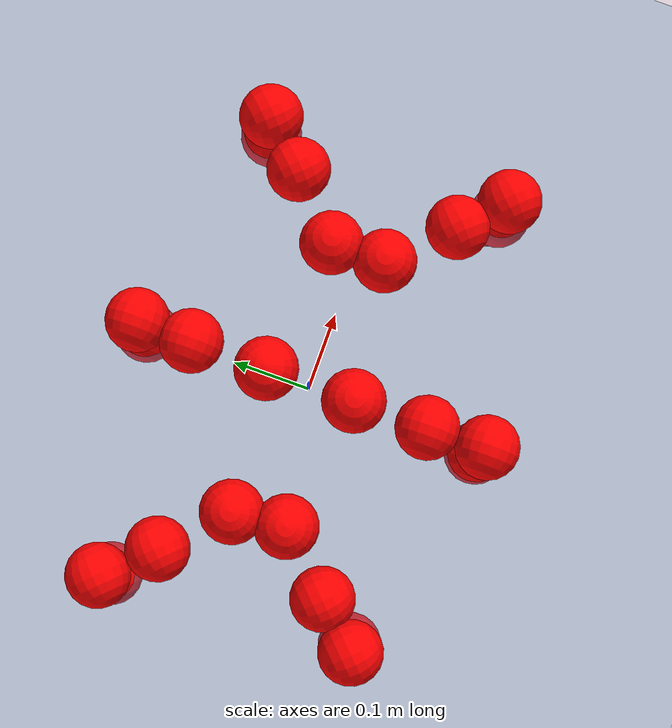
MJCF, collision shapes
<mujoco model="Golem">
  <compiler angle="radian" assetdir="assets" balanceinertia="true" inertiafromgeom="false"/>

  <option timestep="0.005" density="1.2" viscosity="2e-05"/>

  <size nkey="1"/>

  <visual>
    <quality shadowsize="8192"/>
    <map shadowclip="0.5"/>
  </visual>

  <default>
    <default class="/">
      <joint armature="0.01" damping="0.01" frictionloss="0.01"/>
      <geom contype="0" conaffinity="0" group="1" solref="-1000 -80"/>
      <site size="0.01 0.005 0.005" group="5"/>
      <general forcelimited="true" biastype="affine" gainprm="25" biasprm="0 -25 -0.5"/>
      <default class="visual">
        <geom type="mesh" group="2"/>
      </default>
      <default class="collision">
        <geom group="3"/>
      </default>
      <default class="foot">
        <geom size="0.01 0 0" condim="6" group="4" priority="1" solimp="0.015 1 0.01"/>
      </default>
      <default class="reward_collision_sphere">
        <geom group="5" rgba="1 0 0 1"/>
      </default>
    </default>
  </default>

  <asset>
    <texture type="skybox" colorspace="auto" name="//unnamed_texture_0" builtin="gradient" rgb1="0.95 0.95 0.95" rgb2="0.95 0.95 0.95" width="100" height="600"/>
    <texture type="2d" colorspace="auto" name="texplane" builtin="checker" rgb1="0.345 0.575 0.748" rgb2="0.345 0.575 0.748" markrgb="1 1 1" width="512" height="512"/>
    <material name="MatPlane" class="/" texture="texplane" texuniform="true" texrepeat="2 2" specular="0.9"/>
    <mesh name="body" class="/" file="body.stl" scale="0.001 0.001 0.001"/>
    <mesh name="coxa" class="/" file="coxa.stl" scale="0.001 0.001 0.001"/>
    <mesh name="femur" class="/" file="femur.stl" scale="0.001 0.001 0.001"/>
    <mesh name="tibia" class="/" file="tibia.stl" scale="0.001 0.001 0.001"/>
    <mesh name="tarsus" class="/" file="tarsus.stl" scale="0.001 0.001 0.001"/>
  </asset>

  <worldbody>
    <geom name="floor" class="/" size="100 100 0.125" type="plane" group="0" material="MatPlane"/>
    <light name="toplight_shadow" class="/" pos="0 0 5" dir="0.0990148 0.0990148 -0.990148" type="directional" ambient="0.04 0.04 0.04" diffuse="0.55 0.55 0.55" specular="0.12 0.12 0.12"/>
    <light name="toplight_fill" class="/" pos="0 0 5" dir="0.0990148 0.0990148 -0.990148" type="directional" castshadow="false" ambient="0.04 0.04 0.04" diffuse="0.3 0.3 0.3" specular="0.08 0.08 0.08"/>
    <body name="trunk" pos="-0.00205483 -0.000917121 -0.00184228" quat="1 0.000196681 4.44877e-05 -5.81544e-07">
      <inertial pos="0.00281623 -0.000631728 -4.10472e-05" quat="0.999899 -0.00953075 0.00517904 0.00914433" mass="3.73852" diaginertia="0.0152521 0.00154371 0.0258186"/>
      <joint name="//unnamed_joint_0" type="free"/>
      <geom name="//unnamed_geom_1" class="/" pos="0 0 0.0772538" quat="1 0 0 0" type="mesh" rgba="0.9 0.9 0.9 1" mesh="body"/>
      <site name="imu" class="/" pos="0.137453 0.00525572 0.122552" size="0.00995476"/>
      <camera name="track" class="/" pos="0 -1.36979 0" quat="0.707107 0.707107 0 0" mode="trackcom"/>
      <camera name="ego_camera" class="/" pos="0.142277 0 0.120709" quat="-0.5 -0.5 0.5 0.5"/>
      <body name="coxa_RR" pos="-0.192102 -0.0558454 0.0761764" quat="0.382921 4.36297e-05 -0.00013485 -0.923781">
        <inertial pos="-0.000684856 -0.00193089 -0.000543818" quat="0.999998 0.00138023 -0.000840179 -0.00126607" mass="0.19513" diaginertia="0.0149288 0.0015318 0.0255249"/>
        <joint name="coxa_joint_RR" class="/" pos="0 0 0" axis="-0.00154622 -0.00117384 -0.999998" stiffness="0.00856121" range="-3.13907 3.08319" armature="0.00870517" damping="0.00383355" frictionloss="0.00944245"/>
        <geom name="//unnamed_geom_2" class="/" type="mesh" rgba="0.2 0.2 0.2 1" mesh="coxa"/>
        <geom name="//unnamed_geom_3" class="reward_collision_sphere" size="0.039819" pos="-0.0328332 0 0"/>
        <body name="femur_RR" pos="0.0633256 0.00221153 -0.00351296" quat="0.499867 -0.500038 0.499966 0.50013">
          <inertial pos="0.000124466 0.00228528 -0.00246137" quat="0.999996 0.00108233 0.00233116 0.000783143" mass="0.199051" diaginertia="0.0158564 0.0015345 0.0260568"/>
          <joint name="femur_joint_RR" class="/" pos="0 0 0" axis="-0.00015879 0.00256944 -0.999997" range="-3.13793 3.09302" armature="0.00856931" damping="0.00593704" frictionloss="0.0113663"/>
          <geom name="//unnamed_geom_4" class="/" type="mesh" rgba="0.9 0.9 0.9 1" mesh="femur"/>
          <geom name="//unnamed_geom_5" class="reward_collision_sphere" size="0.039819"/>
          <body name="tibia_RR" pos="0.000299814 -0.0712426 0.0032624" quat="-0.000445109 0.999999 -0.000917247 0.0002565">
            <inertial pos="-0.00253658 -0.00244332 -0.00012819" quat="0.9999 0.00561059 0.010107 0.00814452" mass="0.197685" diaginertia="0.0152708 0.00153792 0.0261498"/>
            <joint name="tibia_joint_RR" class="/" pos="0 0 0" axis="0.00149325 -0.0101881 0.999947" stiffness="0.00716113" range="-3.18045 3.10677" armature="0.00866789" damping="0" frictionloss="0.00942749"/>
            <geom name="//unnamed_geom_6" class="/" type="mesh" rgba="0.2 0.2 0.2 1" mesh="tibia"/>
            <geom name="//unnamed_geom_7" class="reward_collision_sphere" size="0.039819"/>
            <body name="tarsus_RR" pos="0.0962401 -0.00102958 -0.00226994" quat="1 -3.37074e-05 -5.59422e-06 6.36837e-05">
              <inertial pos="0.064888 0.00265913 -0.0026939" quat="0.497242 0.497984 0.498928 0.5058" mass="0.196551" diaginertia="0.0155357 0.00153706 0.0253463"/>
              <joint name="tarsus_joint_RR" class="/" pos="0 0 0" axis="0.000773212 -0.00122565 0.999999" range="-3.1609 3.13513" armature="0.0115015" damping="0.00381464" frictionloss="0.0113462"/>
              <geom name="//unnamed_geom_8" class="/" type="mesh" rgba="0.9 0.9 0.9 1" mesh="tarsus"/>
              <geom name="foot_1" class="foot" size="0.00876747" pos="0.122577 0 0" quat="0 -0.707107 0 0.707107"/>
              <geom name="//unnamed_geom_10" class="reward_collision_sphere" size="0.039819"/>
              <geom name="//unnamed_geom_11" class="reward_collision_sphere" size="0.0149321" pos="0.117652 0 0"/>
              <site name="foot_1" class="foot" pos="0.122577 0 0" quat="0 -0.707107 0 0.707107" size="0.00995476"/>
            </body>
          </body>
        </body>
      </body>
      <body name="coxa_RM" pos="0.000677464 -0.0907179 0.0764734" quat="0.706718 3.22593e-05 0.000591916 -0.707495">
        <inertial pos="-0.00249905 9.60605e-05 -0.00159321" quat="0.999989 -0.00222907 -0.00265113 -0.00330475" mass="0.191801" diaginertia="0.015571 0.00146907 0.0251615"/>
        <joint name="coxa_joint_RM" class="/" pos="0 0 0" axis="1.2301e-05 0.000391012 -1" range="-3.17008 3.12888" armature="0.00933191" damping="0.015406" frictionloss="0.0098194"/>
        <geom name="//unnamed_geom_12" class="/" type="mesh" rgba="0.2 0.2 0.2 1" mesh="coxa"/>
        <geom name="//unnamed_geom_13" class="reward_collision_sphere" size="0.039819" pos="-0.0328332 0 0"/>
        <body name="femur_RM" pos="0.0612779 -0.000717485 0.002573" quat="0.499187 -0.49974 0.500235 0.500837">
          <inertial pos="0.00182765 -0.00186363 0.00144859" quat="0.99992 0.010263 -0.00675633 0.00289945" mass="0.203388" diaginertia="0.0162532 0.00150452 0.0268437"/>
          <joint name="femur_joint_RM" class="/" pos="0 0 0" axis="0.00400498 0.000147176 -0.999992" range="-3.14116 3.12985" armature="0.00954768" damping="0.00609606" frictionloss="0.00917587"/>
          <geom name="//unnamed_geom_14" class="/" type="mesh" rgba="0.9 0.9 0.9 1" mesh="femur"/>
          <geom name="//unnamed_geom_15" class="reward_collision_sphere" size="0.039819"/>
          <body name="tibia_RM" pos="-0.00256644 -0.0752833 0.00170627" quat="-0.000294537 1 -0.00032253 -0.000170396">
            <inertial pos="-0.00130993 0.00114166 -0.00056276" quat="0.999999 -0.000726931 -0.000570479 -0.000476038" mass="0.202753" diaginertia="0.0160289 0.00153923 0.0270714"/>
            <joint name="tibia_joint_RM" class="/" pos="0 0 0" axis="-0.00281271 0.0121825 0.999922" range="-3.08374 3.11836" armature="0.0110642" damping="0.00294315" frictionloss="0.00956811"/>
            <geom name="//unnamed_geom_16" class="/" type="mesh" rgba="0.2 0.2 0.2 1" mesh="tibia"/>
            <geom name="//unnamed_geom_17" class="reward_collision_sphere" size="0.039819"/>
            <body name="tarsus_RM" pos="0.094347 -0.00219091 0.00315619" quat="0.999999 -0.000216411 -1.46844e-05 -0.00140791">
              <inertial pos="0.0674156 0.00197166 0.00163473" quat="0.501737 0.500563 0.498357 0.499337" mass="0.186701" diaginertia="0.0150434 0.00144772 0.0240344"/>
              <joint name="tarsus_joint_RM" class="/" pos="0 0 0" axis="0.00349906 -0.0126285 0.999914" stiffness="0.000936632" range="-3.14208 3.14767" armature="0.0112327" damping="0.00647263" frictionloss="0.00990369"/>
              <geom name="//unnamed_geom_18" class="/" type="mesh" rgba="0.9 0.9 0.9 1" mesh="tarsus"/>
              <geom name="foot_2" class="foot" size="0.0105609" pos="0.122577 0 0" quat="0 -0.707107 0 0.707107"/>
              <geom name="//unnamed_geom_20" class="reward_collision_sphere" size="0.039819"/>
              <geom name="//unnamed_geom_21" class="reward_collision_sphere" size="0.0149321" pos="0.117652 0 0"/>
              <site name="foot_2" class="foot" pos="0.122577 0 0" quat="0 -0.707107 0 0.707107" size="0.00995476"/>
            </body>
          </body>
        </body>
      </body>
      <body name="coxa_RF" pos="0.197835 -0.0590775 0.0769132" quat="0.923384 0.000477293 -9.52351e-06 -0.383877">
        <inertial pos="-0.00246195 -6.85996e-05 0.00278335" quat="0.999918 -0.00797198 -0.00397478 -0.00924964" mass="0.201946" diaginertia="0.0153633 0.00150793 0.025062"/>
        <joint name="coxa_joint_RF" class="/" pos="0 0 0" axis="-0.00603942 -0.00554619 -0.999966" range="-3.192 3.13587" armature="0.00845267" damping="0.0209779" frictionloss="0.0113108"/>
        <geom name="//unnamed_geom_22" class="/" type="mesh" rgba="0.2 0.2 0.2 1" mesh="coxa"/>
        <geom name="//unnamed_geom_23" class="reward_collision_sphere" size="0.039819" pos="-0.0328332 0 0"/>
        <body name="femur_RF" pos="0.0666001 0.000391881 -0.00330095" quat="0.499748 -0.49918 0.500939 0.500131">
          <inertial pos="0.00118256 -0.00228341 -0.000909444" quat="0.999987 0.00057567 -0.00283628 -0.0041334" mass="0.187581" diaginertia="0.0158352 0.0014668 0.0243781"/>
          <joint name="femur_joint_RF" class="/" pos="0 0 0" axis="0.00188328 0.00263074 -0.999995" range="-3.10787 3.09617" armature="0.00943603" damping="0" frictionloss="0.00919931"/>
          <geom name="//unnamed_geom_24" class="/" type="mesh" rgba="0.9 0.9 0.9 1" mesh="femur"/>
          <geom name="//unnamed_geom_25" class="reward_collision_sphere" size="0.039819"/>
          <body name="tibia_RF" pos="-0.000706042 -0.0717244 0.00177398" quat="7.9425e-05 1 -3.36873e-05 -1.54525e-05">
            <inertial pos="-0.00194767 0.000210735 0.000142807" quat="0.999992 0.00146672 -0.00353859 -0.000618046" mass="0.187981" diaginertia="0.0146306 0.00145648 0.0247923"/>
            <joint name="tibia_joint_RF" class="/" pos="0 0 0" axis="0.00999994 0.00889722 0.99991" range="-3.08595 3.12394" armature="0.00986081" damping="0" frictionloss="0.0112591"/>
            <geom name="//unnamed_geom_26" class="/" type="mesh" rgba="0.2 0.2 0.2 1" mesh="tibia"/>
            <geom name="//unnamed_geom_27" class="reward_collision_sphere" size="0.039819"/>
            <body name="tarsus_RF" pos="0.0961988 0.000714924 -0.00236335" quat="0.999999 0.00113352 0.00079235 -0.000276509">
              <inertial pos="0.0634495 -0.00264568 0.000442572" quat="0.504392 0.499631 0.49602 0.499921" mass="0.191005" diaginertia="0.0152335 0.00151591 0.0243448"/>
              <joint name="tarsus_joint_RF" class="/" pos="0 0 0" axis="-0.00225832 -0.0129664 0.999913" range="-3.14352 3.14291" armature="0.00903246" damping="0" frictionloss="0.00866231"/>
              <geom name="//unnamed_geom_28" class="/" type="mesh" rgba="0.9 0.9 0.9 1" mesh="tarsus"/>
              <geom name="foot_3" class="foot" size="0.00985506" pos="0.122577 0 0" quat="0 -0.707107 0 0.707107"/>
              <geom name="//unnamed_geom_30" class="reward_collision_sphere" size="0.039819"/>
              <geom name="//unnamed_geom_31" class="reward_collision_sphere" size="0.0149321" pos="0.117652 0 0"/>
              <site name="foot_3" class="foot" pos="0.122577 0 0" quat="0 -0.707107 0 0.707107" size="0.00995476"/>
            </body>
          </body>
        </body>
      </body>
      <body name="coxa_LR" pos="-0.197707 0.0582613 0.0752883" quat="0.382751 6.40257e-07 8.34663e-05 0.923852">
        <inertial pos="0.00173385 0.000203298 0.0011766" quat="0.999952 -0.00419214 0.00885975 -0.000440372" mass="0.194969" diaginertia="0.0158337 0.00156481 0.0256455"/>
        <joint name="coxa_joint_LR" class="/" pos="0 0 0" axis="0.0157227 -0.00553182 -0.999861" stiffness="0.0169409" range="-3.14252 3.18131" armature="0.011406" damping="0.00490565" frictionloss="0.0106025"/>
        <geom name="//unnamed_geom_32" class="/" type="mesh" rgba="0.2 0.2 0.2 1" mesh="coxa"/>
        <geom name="//unnamed_geom_33" class="reward_collision_sphere" size="0.039819" pos="-0.0328332 0 0"/>
        <body name="femur_LR" pos="0.0659317 0.00223329 0.00226189" quat="0.498941 -0.499963 0.500633 0.500461">
          <inertial pos="-0.0025427 -0.00206672 0.00201713" quat="1 -6.75305e-05 -0.000370593 -9.20975e-05" mass="0.208677" diaginertia="0.0166546 0.00159919 0.0260518"/>
          <joint name="femur_joint_LR" class="/" pos="0 0 0" axis="0.00855005 -0.00521206 0.99995" range="-3.19693 3.08258" armature="0.0104707" damping="0" frictionloss="0.00863826"/>
          <geom name="//unnamed_geom_34" class="/" type="mesh" rgba="0.9 0.9 0.9 1" mesh="femur"/>
          <geom name="//unnamed_geom_35" class="reward_collision_sphere" size="0.039819"/>
          <body name="tibia_LR" pos="0.00120112 -0.0774922 -0.00203679" quat="-0.000387483 1 0.000471679 0.000239334">
            <inertial pos="-0.000294752 -0.00210045 0.000876923" quat="0.99993 0.00786781 -0.00849959 -0.00244887" mass="0.183606" diaginertia="0.0146374 0.00149913 0.0241525"/>
            <joint name="tibia_joint_LR" class="/" pos="0 0 0" axis="0.0105236 0.00465301 -0.999934" range="-3.13324 3.09068" armature="0.00985668" damping="0.00206523" frictionloss="0.011365"/>
            <geom name="//unnamed_geom_36" class="/" type="mesh" rgba="0.2 0.2 0.2 1" mesh="tibia"/>
            <geom name="//unnamed_geom_37" class="reward_collision_sphere" size="0.039819"/>
            <body name="tarsus_LR" pos="0.0977539 -0.00159774 -0.00240586" quat="0.999999 -0.00092193 -0.00076467 0.000743533">
              <inertial pos="0.0633198 0.00256321 -0.00272011" quat="0.501276 0.50017 0.497138 0.501404" mass="0.191635" diaginertia="0.0157627 0.00156668 0.0258009"/>
              <joint name="tarsus_joint_LR" class="/" pos="0 0 0" axis="0.00783749 0.000904978 -0.999969" range="-3.19787 3.15848" armature="0.00857001" damping="0.0285343" frictionloss="0.0102445"/>
              <geom name="//unnamed_geom_38" class="/" type="mesh" rgba="0.9 0.9 0.9 1" mesh="tarsus"/>
              <geom name="foot_4" class="foot" size="0.0100124" pos="0.122577 0 0" quat="0.707107 0 -0.707107 0"/>
              <geom name="//unnamed_geom_40" class="reward_collision_sphere" size="0.039819"/>
              <geom name="//unnamed_geom_41" class="reward_collision_sphere" size="0.0149321" pos="0.117652 0 0"/>
              <site name="foot_4" class="foot" pos="0.122577 0 0" quat="0.707107 0 -0.707107 0" size="0.00995476"/>
            </body>
          </body>
        </body>
      </body>
      <body name="coxa_LM" pos="0.0014233 0.0877635 0.0810619" quat="0.707038 -0.000179633 -0.000266223 0.707175">
        <inertial pos="0.00305794 0.00128723 0.00204994" quat="0.999927 -0.00144109 0.0110462 -0.00461987" mass="0.19304" diaginertia="0.016425 0.00148625 0.0260987"/>
        <joint name="coxa_joint_LM" class="/" pos="0 0 0" axis="-0.00580203 -0.00875632 -0.999945" range="-3.09833 3.17005" armature="0.00988605" damping="0.000737945" frictionloss="0.00975493"/>
        <geom name="//unnamed_geom_42" class="/" type="mesh" rgba="0.2 0.2 0.2 1" mesh="coxa"/>
        <geom name="//unnamed_geom_43" class="reward_collision_sphere" size="0.039819" pos="-0.0328332 0 0"/>
        <body name="femur_LM" pos="0.0640388 -0.000783964 -0.000531664" quat="0.500285 -0.499823 0.499035 0.500856">
          <inertial pos="0.0028628 0.000772801 -0.00284264" quat="1 0.000124383 -0.000275691 2.46258e-05" mass="0.209378" diaginertia="0.0162702 0.00155381 0.0274336"/>
          <joint name="femur_joint_LM" class="/" pos="0 0 0" axis="-0.00305627 0.013106 0.999909" stiffness="0.0060814" range="-3.18394 3.09432" armature="0.0104849" damping="0.0126371" frictionloss="0.0113636"/>
          <geom name="//unnamed_geom_44" class="/" type="mesh" rgba="0.9 0.9 0.9 1" mesh="femur"/>
          <geom name="//unnamed_geom_45" class="reward_collision_sphere" size="0.039819"/>
          <body name="tibia_LM" pos="0.00113951 -0.0704883 -0.00229179" quat="-0.000100786 1 -0.000308045 -0.000340869">
            <inertial pos="0.00304725 0.00142545 -0.000320605" quat="0.999973 0.00648226 0.00337766 -0.000387399" mass="0.208424" diaginertia="0.0161654 0.00152638 0.0273624"/>
            <joint name="tibia_joint_LM" class="/" pos="0 0 0" axis="-0.013977 0.00148389 -0.999901" range="-3.13057 3.14677" armature="0.00873485" damping="0" frictionloss="0.0100637"/>
            <geom name="//unnamed_geom_46" class="/" type="mesh" rgba="0.2 0.2 0.2 1" mesh="tibia"/>
            <geom name="//unnamed_geom_47" class="reward_collision_sphere" size="0.039819"/>
            <body name="tarsus_LM" pos="0.0977433 -0.00124684 -0.000621795" quat="1 -0.000139104 4.40705e-05 -1.76541e-05">
              <inertial pos="0.0660814 0.000631086 0.00272928" quat="0.493602 0.509017 0.500448 0.4968" mass="0.191675" diaginertia="0.0153381 0.00155496 0.0253993"/>
              <joint name="tarsus_joint_LM" class="/" pos="0 0 0" axis="0.00920409 0.000265104 -0.999958" range="-3.16264 3.12695" armature="0.010351" damping="0.0175428" frictionloss="0.0099201"/>
              <geom name="//unnamed_geom_48" class="/" type="mesh" rgba="0.9 0.9 0.9 1" mesh="tarsus"/>
              <geom name="foot_5" class="foot" size="0.00951157" pos="0.122577 0 0" quat="0.707107 0 -0.707107 0"/>
              <geom name="//unnamed_geom_50" class="reward_collision_sphere" size="0.039819"/>
              <geom name="//unnamed_geom_51" class="reward_collision_sphere" size="0.0149321" pos="0.117652 0 0"/>
              <site name="foot_5" class="foot" pos="0.122577 0 0" quat="0.707107 0 -0.707107 0" size="0.00995476"/>
            </body>
          </body>
        </body>
      </body>
      <body name="coxa_LF" pos="0.196946 0.0556773 0.0780667" quat="0.92422 0.000542206 -7.97243e-05 0.38186">
        <inertial pos="-0.000630142 0.000565594 0.00285744" quat="0.999997 0.00228031 7.23985e-05 0.00105799" mass="0.193885" diaginertia="0.0158871 0.00145617 0.025118"/>
        <joint name="coxa_joint_LF" class="/" pos="0 0 0" axis="0.00940806 -0.0116903 -0.999887" range="-3.14968 3.11764" armature="0.00949195" damping="0.0261615" frictionloss="0.00861087"/>
        <geom name="//unnamed_geom_52" class="/" type="mesh" rgba="0.2 0.2 0.2 1" mesh="coxa"/>
        <geom name="//unnamed_geom_53" class="reward_collision_sphere" size="0.039819" pos="-0.0328332 0 0"/>
        <body name="femur_LF" pos="0.0669629 -0.00207023 0.000693441" quat="0.50038 -0.499259 0.49994 0.50042">
          <inertial pos="0.000405757 -0.000407674 0.00223925" quat="0.9999 -0.000102983 0.00148108 -0.0140668" mass="0.200478" diaginertia="0.0152086 0.00150686 0.0256869"/>
          <joint name="femur_joint_LF" class="/" pos="0 0 0" axis="0.00334139 0.0153893 0.999876" range="-3.16092 3.14562" armature="0.00973652" damping="0.00315698" frictionloss="0.0111915"/>
          <geom name="//unnamed_geom_54" class="/" type="mesh" rgba="0.9 0.9 0.9 1" mesh="femur"/>
          <geom name="//unnamed_geom_55" class="reward_collision_sphere" size="0.039819"/>
          <body name="tibia_LF" pos="-0.000968623 -0.0743608 0.0023327" quat="-0.000138831 1 -0.000698666 -0.000573908">
            <inertial pos="-0.000261478 -0.000866233 -0.00234798" quat="0.999949 0.000255789 -0.00795077 0.00628072" mass="0.204218" diaginertia="0.0164805 0.00150272 0.0255785"/>
            <joint name="tibia_joint_LF" class="/" pos="0 0 0" axis="-0.00106241 -0.00225172 -0.999997" range="-3.11636 3.18025" armature="0.0103715" damping="0.0135641" frictionloss="0.0100036"/>
            <geom name="//unnamed_geom_56" class="/" type="mesh" rgba="0.2 0.2 0.2 1" mesh="tibia"/>
            <geom name="//unnamed_geom_57" class="reward_collision_sphere" size="0.039819"/>
            <body name="tarsus_LF" pos="0.0977288 0.00318749 -0.00066949" quat="0.999999 0.000636638 -0.00099295 9.31011e-05">
              <inertial pos="0.064197 -0.000692242 0.000163606" quat="0.500168 0.49988 0.49898 0.50097" mass="0.184406" diaginertia="0.0147216 0.001407 0.0252654"/>
              <joint name="tarsus_joint_LF" class="/" pos="0 0 0" axis="-0.00724949 0.0110897 -0.999912" range="-3.14937 3.08479" armature="0.011256" damping="0.0247382" frictionloss="0.0106497"/>
              <geom name="//unnamed_geom_58" class="/" type="mesh" rgba="0.9 0.9 0.9 1" mesh="tarsus"/>
              <geom name="foot_6" class="foot" size="0.0101777" pos="0.122577 0 0" quat="0.707107 0 -0.707107 0"/>
              <geom name="//unnamed_geom_60" class="reward_collision_sphere" size="0.039819"/>
              <geom name="//unnamed_geom_61" class="reward_collision_sphere" size="0.0149321" pos="0.117652 0 0"/>
              <site name="foot_6" class="foot" pos="0.122577 0 0" quat="0.707107 0 -0.707107 0" size="0.00995476"/>
            </body>
          </body>
        </body>
      </body>
    </body>
  </worldbody>

  <contact>
    <pair class="/" geom1="floor" geom2="foot_1" name="//unnamed_contact_0"/>
    <pair class="/" geom1="floor" geom2="foot_2" name="//unnamed_contact_1"/>
    <pair class="/" geom1="floor" geom2="foot_3" name="//unnamed_contact_2"/>
    <pair class="/" geom1="floor" geom2="foot_4" name="//unnamed_contact_3"/>
    <pair class="/" geom1="floor" geom2="foot_5" name="//unnamed_contact_4"/>
    <pair class="/" geom1="floor" geom2="foot_6" name="//unnamed_contact_5"/>
  </contact>

  <actuator>
    <general name="coxa_joint_RR" class="/" joint="coxa_joint_RR" forcerange="-8.01438 8.01438" gainprm="23.5084" biasprm="0 -23.5084 -0.515483"/>
    <general name="femur_joint_RR" class="/" joint="femur_joint_RR" forcerange="-8.03977 8.03977" gainprm="23.5084" biasprm="0 -23.5084 -0.515483"/>
    <general name="tibia_joint_RR" class="/" joint="tibia_joint_RR" forcerange="-6.50343 6.50343" gainprm="23.5084" biasprm="0 -23.5084 -0.515483"/>
    <general name="tarsus_joint_RR" class="/" joint="tarsus_joint_RR" forcerange="-6.5321 6.5321" gainprm="23.5084" biasprm="0 -23.5084 -0.515483"/>
    <general name="coxa_joint_RM" class="/" joint="coxa_joint_RM" forcerange="-6.66632 6.66632" gainprm="23.5084" biasprm="0 -23.5084 -0.515483"/>
    <general name="femur_joint_RM" class="/" joint="femur_joint_RM" forcerange="-7.10918 7.10918" gainprm="23.5084" biasprm="0 -23.5084 -0.515483"/>
    <general name="tibia_joint_RM" class="/" joint="tibia_joint_RM" forcerange="-7.16324 7.16324" gainprm="23.5084" biasprm="0 -23.5084 -0.515483"/>
    <general name="tarsus_joint_RM" class="/" joint="tarsus_joint_RM" forcerange="-7.45722 7.45722" gainprm="23.5084" biasprm="0 -23.5084 -0.515483"/>
    <general name="coxa_joint_RF" class="/" joint="coxa_joint_RF" forcerange="-6.98008 6.98008" gainprm="23.5084" biasprm="0 -23.5084 -0.515483"/>
    <general name="femur_joint_RF" class="/" joint="femur_joint_RF" forcerange="-7.60933 7.60933" gainprm="23.5084" biasprm="0 -23.5084 -0.515483"/>
    <general name="tibia_joint_RF" class="/" joint="tibia_joint_RF" forcerange="-7.8338 7.8338" gainprm="23.5084" biasprm="0 -23.5084 -0.515483"/>
    <general name="tarsus_joint_RF" class="/" joint="tarsus_joint_RF" forcerange="-7.91331 7.91331" gainprm="23.5084" biasprm="0 -23.5084 -0.515483"/>
    <general name="coxa_joint_LR" class="/" joint="coxa_joint_LR" forcerange="-7.20941 7.20941" gainprm="23.5084" biasprm="0 -23.5084 -0.515483"/>
    <general name="femur_joint_LR" class="/" joint="femur_joint_LR" forcerange="-7.34651 7.34651" gainprm="23.5084" biasprm="0 -23.5084 -0.515483"/>
    <general name="tibia_joint_LR" class="/" joint="tibia_joint_LR" forcerange="-7.66882 7.66882" gainprm="23.5084" biasprm="0 -23.5084 -0.515483"/>
    <general name="tarsus_joint_LR" class="/" joint="tarsus_joint_LR" forcerange="-7.83304 7.83304" gainprm="23.5084" biasprm="0 -23.5084 -0.515483"/>
    <general name="coxa_joint_LM" class="/" joint="coxa_joint_LM" forcerange="-7.05824 7.05824" gainprm="23.5084" biasprm="0 -23.5084 -0.515483"/>
    <general name="femur_joint_LM" class="/" joint="femur_joint_LM" forcerange="-7.55182 7.55182" gainprm="23.5084" biasprm="0 -23.5084 -0.515483"/>
    <general name="tibia_joint_LM" class="/" joint="tibia_joint_LM" forcerange="-7.31539 7.31539" gainprm="23.5084" biasprm="0 -23.5084 -0.515483"/>
    <general name="tarsus_joint_LM" class="/" joint="tarsus_joint_LM" forcerange="-6.81773 6.81773" gainprm="23.5084" biasprm="0 -23.5084 -0.515483"/>
    <general name="coxa_joint_LF" class="/" joint="coxa_joint_LF" forcerange="-7.21308 7.21308" gainprm="23.5084" biasprm="0 -23.5084 -0.515483"/>
    <general name="femur_joint_LF" class="/" joint="femur_joint_LF" forcerange="-7.93754 7.93754" gainprm="23.5084" biasprm="0 -23.5084 -0.515483"/>
    <general name="tibia_joint_LF" class="/" joint="tibia_joint_LF" forcerange="-7.99001 7.99001" gainprm="23.5084" biasprm="0 -23.5084 -0.515483"/>
    <general name="tarsus_joint_LF" class="/" joint="tarsus_joint_LF" forcerange="-6.98028 6.98028" gainprm="23.5084" biasprm="0 -23.5084 -0.515483"/>
  </actuator>

  <sensor>
    <gyro site="imu" name="imu_angular_velocity"/>
    <velocimeter site="imu" name="imu_linear_velocity"/>
    <framelinvel objtype="site" objname="foot_1" name="foot_1_global_linear_velocity"/>
    <framelinvel objtype="site" objname="foot_2" name="foot_2_global_linear_velocity"/>
    <framelinvel objtype="site" objname="foot_3" name="foot_3_global_linear_velocity"/>
    <framelinvel objtype="site" objname="foot_4" name="foot_4_global_linear_velocity"/>
    <framelinvel objtype="site" objname="foot_5" name="foot_5_global_linear_velocity"/>
    <framelinvel objtype="site" objname="foot_6" name="foot_6_global_linear_velocity"/>
  </sensor>

  <keyframe>
    <key name="home" qpos="0 0 0.1457 1 0 0 0 0 0 0 0 0 0 0 0 0 0 0 0 0 0 0 0 0 0 0 0 0 0 0 0"/>
  </keyframe>
</mujoco>
